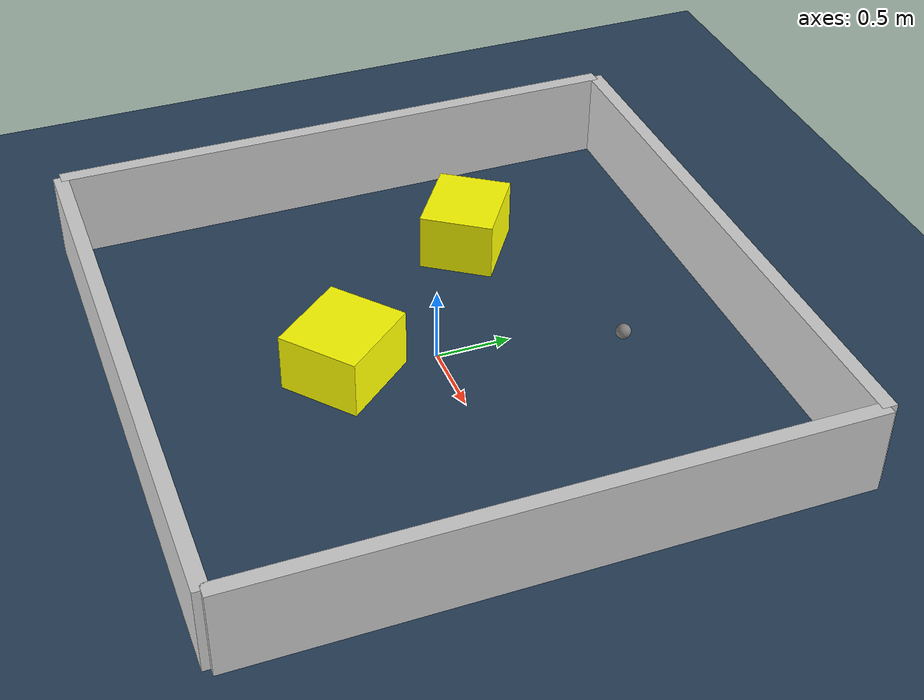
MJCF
<?xml version="1.0" ?>
<mujoco model="generated_environment">
  <option timestep="0.01" integrator="RK4" cone="elliptic"/>
  <default>
    <geom density="1"/>
  </default>
  <asset>
    <texture builtin="gradient" height="3072" rgb1="0.3 0.5 0.7" rgb2="0 0 0" type="skybox" width="512"/>
    <texture builtin="checker" height="300" mark="edge" markrgb="0.8 0.8 0.8" name="groundplane" rgb1="0.2 0.3 0.4" rgb2="0.1 0.2 0.3" type="2d" width="300"/>
    <material name="groundplane" reflectance="0.2" texrepeat="5 5" texture="groundplane" texuniform="true"/>
    <material name="robot" rgba="0.0 1.0 0.0 1"/>
  </asset>
  <worldbody>
    <light dir="0 0 -1" directional="true" pos="0 0 1.5"/>
    <geom condim="4" friction="1.0 0.005 0.001" material="groundplane" name="floor" size="0 0 0.05" type="plane"/>
    <body name="walls">
      <geom name="wall_1" condim="4" pos="-2.0 0.0 0.3" rgba="0.800000011920929 0.800000011920929 0.800000011920929 1.0" size="0.05 2.0 0.3" type="box"/>
      <geom name="wall_2" condim="4" pos="2.0 0.0 0.3" rgba="0.800000011920929 0.800000011920929 0.800000011920929 1.0" size="0.05 2.0 0.3" type="box"/>
      <geom name="wall_3" condim="4" pos="0.0 -2.0 0.3" rgba="0.800000011920929 0.800000011920929 0.800000011920929 1.0" size="2.0 0.05 0.3" type="box"/>
      <geom name="wall_4" condim="4" pos="0.0 2.0 0.3" rgba="0.800000011920929 0.800000011920929 0.800000011920929 1.0" size="2.0 0.05 0.3" type="box"/>
    </body>
    <body name="robot">
      <joint name="joint_x" type="slide" pos="0 0 0" axis="1 0 0"/>
      <joint name="joint_y" type="slide" pos="0 0 0" axis="0 1 0"/>
      <geom name="robot" type="sphere" pos="0.4065385468998488 1.1193956739300996 0.2" size="0.05" mass="5." friction="1.0 0.005 0.0001" condim="4"/>
      <site name="sensor_ball"/>
    </body>
    <body name="obstacle_1_movable">
      <geom name="obstacle_1_movable" condim="4" pos="-1.0582992928473764 0.6027938169763551 0.2" euler="0 0 325.3866338734799" friction="1.0 0.005 0.001" rgba="1 1 0 1" size="0.2910296218574427 0.25223915510341477 0.2" type="box" mass="0.1"/>
      <joint type="free"/>
    </body>
    <body name="obstacle_2_movable">
      <geom name="obstacle_2_movable" condim="4" pos="-0.031994159730852845 -0.617263931432219 0.2" euler="0 0 129.96806083880253" friction="1.0 0.005 0.001" rgba="1 1 0 1" size="0.3048621536228723 0.2786517480711518 0.2" type="box" mass="0.1"/>
      <joint type="free"/>
    </body>
  </worldbody>
  <actuator>
    <motor name="actuator_x" joint="joint_x" gear="1" ctrlrange="-1 1"/>
    <motor name="actuator_y" joint="joint_y" gear="1" ctrlrange="-1 1"/>
  </actuator>
</mujoco>
